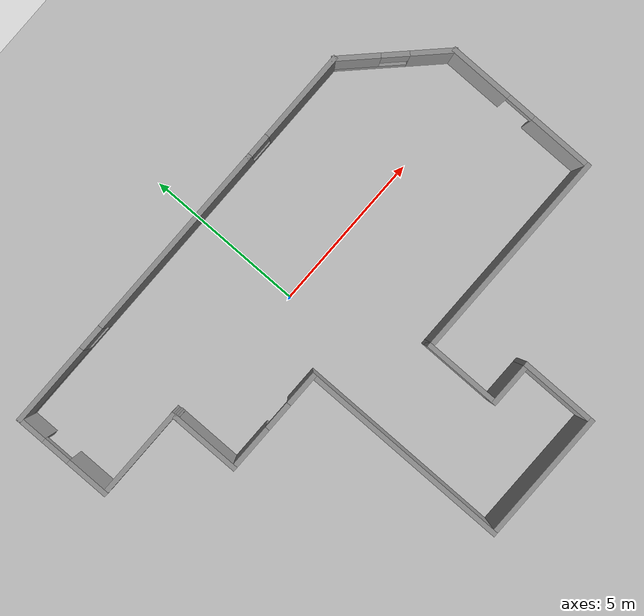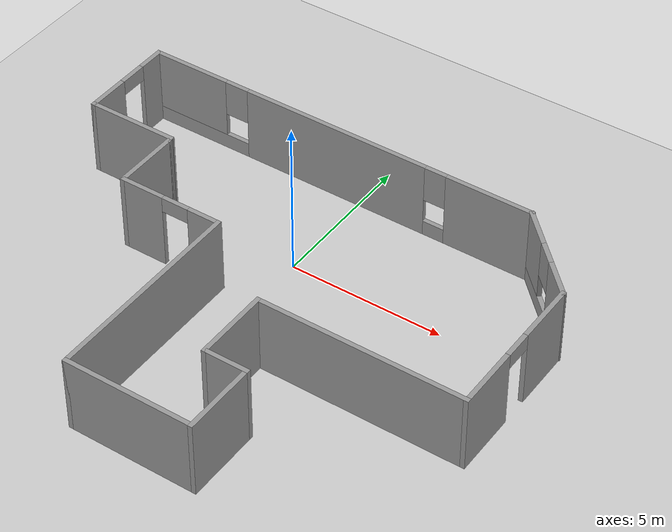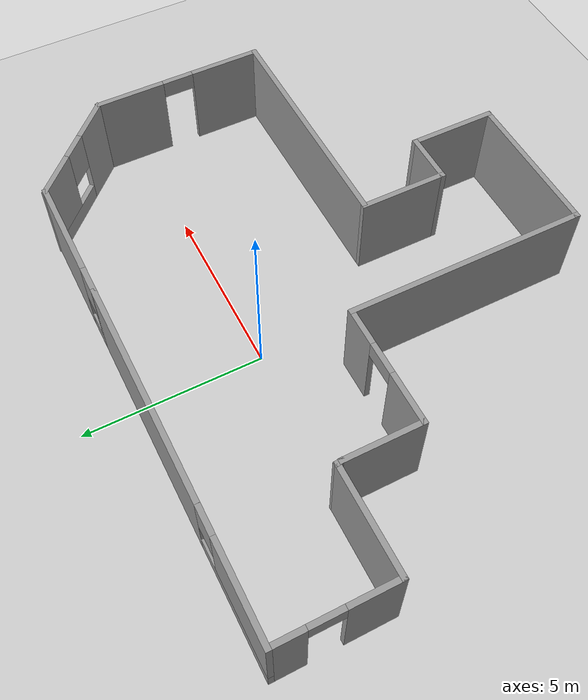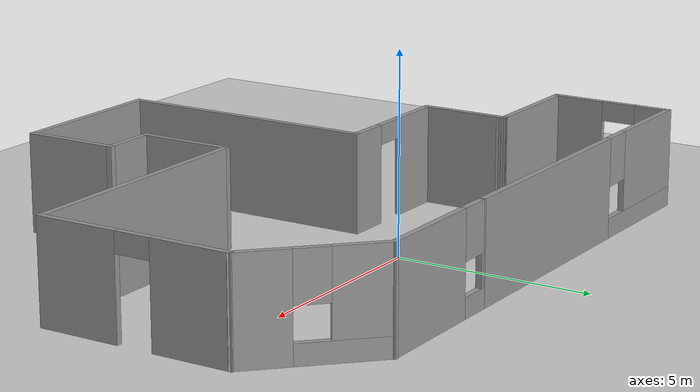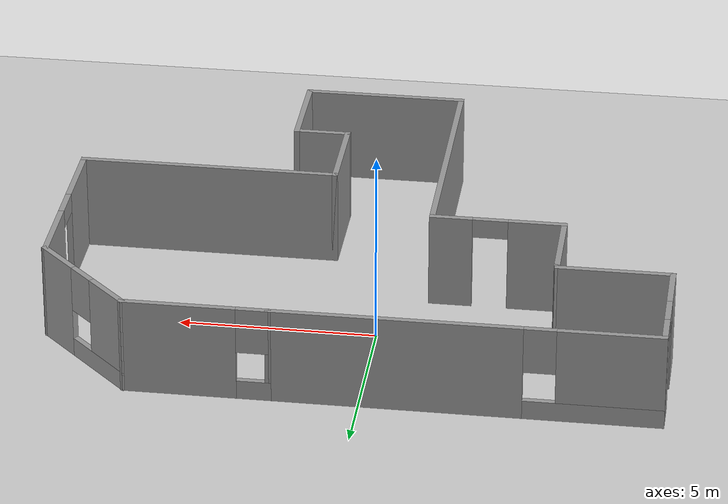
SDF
<sdf version="1.7">
 <world name="default">
  <light name="sun" type="directional">
   <pose>0 0 10 0 -0 0</pose>
   <diffuse>0.8 0.8 0.8 1</diffuse>
   <specular>0.2 0.2 0.2 1</specular>
   <attenuation>
    <range>1000</range>
    <constant>0.9</constant>
    <linear>0.01</linear>
    <quadratic>0.001</quadratic>
   </attenuation>
   <direction>-0.5 0.1 -0.9</direction>
   <spot><inner_angle>0</inner_angle><outer_angle>0</outer_angle><falloff>0</falloff></spot>
  </light>
  <model name="ground_plane">
   <static>1</static>
   <link name="link">
    <collision name="collision">
     <geometry><plane><normal>0 0 1</normal><size>100 100</size></plane></geometry>
     <surface><friction><ode><mu>100</mu><mu2>50</mu2></ode></friction></surface>
    </collision>
    <visual name="visual">
     <cast_shadows>0</cast_shadows>
     <geometry><plane><normal>0 0 1</normal><size>100 100</size></plane></geometry>
     <material>
      <script><uri>file://media/materials/scripts/gazebo.material</uri><name>Gazebo/Grey</name></script>
     </material>
    </visual>
   </link>
  </model>
  <gravity>0 0 -9.8</gravity>
  <magnetic_field>6e-06 2.3e-05 -4.2e-05</magnetic_field>
  <atmosphere type="adiabatic"/>
  <physics type="ode">
   <max_step_size>0.001</max_step_size>
   <real_time_factor>1</real_time_factor>
   <real_time_update_rate>1000</real_time_update_rate>
  </physics>
  <scene><ambient>0.4 0.4 0.4 1</ambient><background>0.7 0.7 0.7 1</background><shadows>1</shadows></scene>
  <audio><device>default</device></audio>
  <spherical_coordinates>
   <surface_model>EARTH_WGS84</surface_model>
   <latitude_deg>0</latitude_deg>
   <longitude_deg>0</longitude_deg>
   <elevation>0</elevation>
   <heading_deg>0</heading_deg>
  </spherical_coordinates>
  <model name="TestRoom">
   <pose>0.400485 -2.54284 0 0 -0 0</pose>
   <link name="Wall_0">
    <collision name="Wall_0_Collision">
     <geometry><box><size>2.25 0.15 2.5</size></box></geometry>
     <pose>0 0 1.25 0 -0 0</pose>
    </collision>
    <visual name="Wall_0_Visual">
     <pose>0 0 1.25 0 -0 0</pose>
     <geometry><box><size>2.25 0.15 2.5</size></box></geometry>
     <material>
      <script><uri>file://media/materials/scripts/gazebo.material</uri><name>Gazebo/Grey</name></script>
      <ambient>1 1 1 1</ambient>
     </material>
     <meta><layer>0</layer></meta>
    </visual>
    <pose>-4.93113 1.67506 0 0 -0 -1.5708</pose>
   </link>
   <link name="Wall_1">
    <pose>-3.25613 0.625063 0 0 -0 0</pose>
    <visual name="Wall_1_Visual_0">
     <pose>-1.00064 0 1.25 0 -0 0</pose>
     <geometry><box><size>1.49872 0.15 2.5</size></box></geometry>
     <material>
      <script><uri>file://media/materials/scripts/gazebo.material</uri><name>Gazebo/Grey</name></script>
      <ambient>1 1 1 1</ambient>
     </material>
     <meta><layer>0</layer></meta>
    </visual>
    <collision name="Wall_1_Collision_0">
     <geometry><box><size>1.49872 0.15 2.5</size></box></geometry>
     <pose>-1.00064 0 1.25 0 -0 0</pose>
    </collision>
    <visual name="Wall_1_Visual_1">
     <pose>1.19936 0 1.25 0 -0 0</pose>
     <geometry><box><size>1.10128 0.15 2.5</size></box></geometry>
     <material>
      <script><uri>file://media/materials/scripts/gazebo.material</uri><name>Gazebo/Grey</name></script>
      <ambient>1 1 1 1</ambient>
     </material>
     <meta><layer>0</layer></meta>
    </visual>
    <collision name="Wall_1_Collision_1">
     <geometry><box><size>1.10128 0.15 2.5</size></box></geometry>
     <pose>1.19936 0 1.25 0 -0 0</pose>
    </collision>
    <visual name="Wall_1_Visual_2">
     <pose>0.19872 0 2.25 0 -0 0</pose>
     <geometry><box><size>0.9 0.15 0.5</size></box></geometry>
     <material>
      <script><uri>file://media/materials/scripts/gazebo.material</uri><name>Gazebo/Grey</name></script>
      <ambient>1 1 1 1</ambient>
     </material>
     <meta><layer>0</layer></meta>
    </visual>
    <collision name="Wall_1_Collision_2">
     <geometry><box><size>0.9 0.15 0.5</size></box></geometry>
     <pose>0.19872 0 2.25 0 -0 0</pose>
    </collision>
   </link>
   <link name="Wall_10">
    <pose>3.60006 5.94387 0 0 -0 3.14159</pose>
    <visual name="Wall_10_Visual_0">
     <pose>-0.429582 0 1.25 0 -0 0</pose>
     <geometry><box><size>2.89084 0.15 2.5</size></box></geometry>
     <material>
      <script><uri>file://media/materials/scripts/gazebo.material</uri><name>Gazebo/Grey</name></script>
      <ambient>1 1 1 1</ambient>
     </material>
     <meta><layer>0</layer></meta>
    </visual>
    <collision name="Wall_10_Collision_0">
     <geometry><box><size>2.89084 0.15 2.5</size></box></geometry>
     <pose>-0.429582 0 1.25 0 -0 0</pose>
    </collision>
    <visual name="Wall_10_Visual_1">
     <pose>1.44542 0 0.25 0 -0 0</pose>
     <geometry><box><size>0.859163 0.15 0.5</size></box></geometry>
     <material>
      <script><uri>file://media/materials/scripts/gazebo.material</uri><name>Gazebo/Grey</name></script>
      <ambient>1 1 1 1</ambient>
     </material>
     <meta><layer>0</layer></meta>
    </visual>
    <collision name="Wall_10_Collision_1">
     <geometry><box><size>0.859163 0.15 0.5</size></box></geometry>
     <pose>1.44542 0 0.25 0 -0 0</pose>
    </collision>
    <visual name="Wall_10_Visual_2">
     <pose>1.84542 0 1.5 0 -0 0</pose>
     <geometry><box><size>0.059163 0.15 2</size></box></geometry>
     <material>
      <script><uri>file://media/materials/scripts/gazebo.material</uri><name>Gazebo/Grey</name></script>
      <ambient>1 1 1 1</ambient>
     </material>
     <meta><layer>0</layer></meta>
    </visual>
    <collision name="Wall_10_Collision_2">
     <geometry><box><size>0.059163 0.15 2</size></box></geometry>
     <pose>1.84542 0 1.5 0 -0 0</pose>
    </collision>
    <visual name="Wall_10_Visual_3">
     <pose>1.41584 0 1.9 0 -0 0</pose>
     <geometry><box><size>0.8 0.15 1.2</size></box></geometry>
     <material>
      <script><uri>file://media/materials/scripts/gazebo.material</uri><name>Gazebo/Grey</name></script>
      <ambient>1 1 1 1</ambient>
     </material>
     <meta><layer>0</layer></meta>
    </visual>
    <collision name="Wall_10_Collision_3">
     <geometry><box><size>0.8 0.15 1.2</size></box></geometry>
     <pose>1.41584 0 1.9 0 -0 0</pose>
    </collision>
   </link>
   <link name="Wall_11">
    <pose>-2.99994 5.94387 0 0 -0 3.14159</pose>
    <visual name="Wall_11_Visual_0">
     <pose>-1.7293 0 1.25 0 -0 0</pose>
     <geometry><box><size>6.29141 0.15 2.5</size></box></geometry>
     <material>
      <script><uri>file://media/materials/scripts/gazebo.material</uri><name>Gazebo/Grey</name></script>
      <ambient>1 1 1 1</ambient>
     </material>
     <meta><layer>0</layer></meta>
    </visual>
    <collision name="Wall_11_Collision_0">
     <geometry><box><size>6.29141 0.15 2.5</size></box></geometry>
     <pose>-1.7293 0 1.25 0 -0 0</pose>
    </collision>
    <visual name="Wall_11_Visual_1">
     <pose>3.1457 0 0.25 0 -0 0</pose>
     <geometry><box><size>3.45859 0.15 0.5</size></box></geometry>
     <material>
      <script><uri>file://media/materials/scripts/gazebo.material</uri><name>Gazebo/Grey</name></script>
      <ambient>1 1 1 1</ambient>
     </material>
     <meta><layer>0</layer></meta>
    </visual>
    <collision name="Wall_11_Collision_1">
     <geometry><box><size>3.45859 0.15 0.5</size></box></geometry>
     <pose>3.1457 0 0.25 0 -0 0</pose>
    </collision>
    <visual name="Wall_11_Visual_2">
     <pose>3.5457 0 1.5 0 -0 0</pose>
     <geometry><box><size>2.65859 0.15 2</size></box></geometry>
     <material>
      <script><uri>file://media/materials/scripts/gazebo.material</uri><name>Gazebo/Grey</name></script>
      <ambient>1 1 1 1</ambient>
     </material>
     <meta><layer>0</layer></meta>
    </visual>
    <collision name="Wall_11_Collision_2">
     <geometry><box><size>2.65859 0.15 2</size></box></geometry>
     <pose>3.5457 0 1.5 0 -0 0</pose>
    </collision>
    <visual name="Wall_11_Visual_3">
     <pose>1.81641 0 1.9 0 -0 0</pose>
     <geometry><box><size>0.8 0.15 1.2</size></box></geometry>
     <material>
      <script><uri>file://media/materials/scripts/gazebo.material</uri><name>Gazebo/Grey</name></script>
      <ambient>1 1 1 1</ambient>
     </material>
     <meta><layer>0</layer></meta>
    </visual>
    <collision name="Wall_11_Collision_3">
     <geometry><box><size>0.8 0.15 1.2</size></box></geometry>
     <pose>1.81641 0 1.9 0 -0 0</pose>
    </collision>
   </link>
   <link name="Wall_12">
    <pose>-7.79994 4.39387 0 0 -0 -1.5708</pose>
    <visual name="Wall_12_Visual_0">
     <pose>-1.15112 0 1.25 0 -0 0</pose>
     <geometry><box><size>0.947764 0.15 2.5</size></box></geometry>
     <material>
      <script><uri>file://media/materials/scripts/gazebo.material</uri><name>Gazebo/Grey</name></script>
      <ambient>1 1 1 1</ambient>
     </material>
     <meta><layer>0</layer></meta>
    </visual>
    <collision name="Wall_12_Collision_0">
     <geometry><box><size>0.947764 0.15 2.5</size></box></geometry>
     <pose>-1.15112 0 1.25 0 -0 0</pose>
    </collision>
    <visual name="Wall_12_Visual_1">
     <pose>0.923882 0 1.25 0 -0 0</pose>
     <geometry><box><size>1.40224 0.15 2.5</size></box></geometry>
     <material>
      <script><uri>file://media/materials/scripts/gazebo.material</uri><name>Gazebo/Grey</name></script>
      <ambient>1 1 1 1</ambient>
     </material>
     <meta><layer>0</layer></meta>
    </visual>
    <collision name="Wall_12_Collision_1">
     <geometry><box><size>1.40224 0.15 2.5</size></box></geometry>
     <pose>0.923882 0 1.25 0 -0 0</pose>
    </collision>
    <visual name="Wall_12_Visual_2">
     <pose>-0.227236 0 2.25 0 -0 0</pose>
     <geometry><box><size>0.9 0.15 0.5</size></box></geometry>
     <material>
      <script><uri>file://media/materials/scripts/gazebo.material</uri><name>Gazebo/Grey</name></script>
      <ambient>1 1 1 1</ambient>
     </material>
     <meta><layer>0</layer></meta>
    </visual>
    <collision name="Wall_12_Collision_2">
     <geometry><box><size>0.9 0.15 0.5</size></box></geometry>
     <pose>-0.227236 0 2.25 0 -0 0</pose>
    </collision>
   </link>
   <link name="Wall_13">
    <collision name="Wall_13_Collision">
     <geometry><box><size>3 0.15 2.5</size></box></geometry>
     <pose>0 0 1.25 0 -0 0</pose>
    </collision>
    <visual name="Wall_13_Visual">
     <pose>0 0 1.25 0 -0 0</pose>
     <geometry><box><size>3 0.15 2.5</size></box></geometry>
     <material>
      <script><uri>file://media/materials/scripts/gazebo.material</uri><name>Gazebo/Grey</name></script>
      <ambient>1 1 1 1</ambient>
     </material>
     <meta><layer>0</layer></meta>
    </visual>
    <pose>-6.37494 2.84387 0 0 -0 0</pose>
   </link>
   <link name="Wall_14">
    <collision name="Wall_14_Collision">
     <geometry><box><size>0.270287 0.15 2.5</size></box></geometry>
     <pose>0 0 1.25 0 -0 0</pose>
    </collision>
    <visual name="Wall_14_Visual">
     <pose>0 0 1.25 0 -0 0</pose>
     <geometry><box><size>0.270287 0.15 2.5</size></box></geometry>
     <material>
      <script><uri>file://media/materials/scripts/gazebo.material</uri><name>Gazebo/Grey</name></script>
      <ambient>1 1 1 1</ambient>
     </material>
     <meta><layer>0</layer></meta>
    </visual>
    <pose>-4.94053 2.78447 0 0 -0 -1.41379</pose>
   </link>
   <link name="Wall_2">
    <collision name="Wall_2_Collision">
     <geometry><box><size>6.75 0.15 2.5</size></box></geometry>
     <pose>0 0 1.25 0 -0 0</pose>
    </collision>
    <visual name="Wall_2_Visual">
     <pose>0 0 1.25 0 -0 0</pose>
     <geometry><box><size>6.75 0.15 2.5</size></box></geometry>
     <material>
      <script><uri>file://media/materials/scripts/gazebo.material</uri><name>Gazebo/Grey</name></script>
      <ambient>1 1 1 1</ambient>
     </material>
     <meta><layer>0</layer></meta>
    </visual>
    <pose>-1.58113 -2.67494 0 0 -0 -1.5708</pose>
   </link>
   <link name="Wall_3">
    <collision name="Wall_3_Collision">
     <geometry><box><size>4.25 0.15 2.5</size></box></geometry>
     <pose>0 0 1.25 0 -0 0</pose>
    </collision>
    <visual name="Wall_3_Visual">
     <pose>0 0 1.25 0 -0 0</pose>
     <geometry><box><size>4.25 0.15 2.5</size></box></geometry>
     <material>
      <script><uri>file://media/materials/scripts/gazebo.material</uri><name>Gazebo/Grey</name></script>
      <ambient>1 1 1 1</ambient>
     </material>
     <meta><layer>0</layer></meta>
    </visual>
    <pose>0.468871 -5.97494 0 0 -0 0</pose>
   </link>
   <link name="Wall_4">
    <collision name="Wall_4_Collision">
     <geometry><box><size>2.5 0.15 2.5</size></box></geometry>
     <pose>0 0 1.25 0 -0 0</pose>
    </collision>
    <visual name="Wall_4_Visual">
     <pose>0 0 1.25 0 -0 0</pose>
     <geometry><box><size>2.5 0.15 2.5</size></box></geometry>
     <material>
      <script><uri>file://media/materials/scripts/gazebo.material</uri><name>Gazebo/Grey</name></script>
      <ambient>1 1 1 1</ambient>
     </material>
     <meta><layer>0</layer></meta>
    </visual>
    <pose>2.51887 -4.79994 0 0 -0 1.5708</pose>
   </link>
   <link name="Wall_5">
    <collision name="Wall_5_Collision">
     <geometry><box><size>1.5 0.15 2.5</size></box></geometry>
     <pose>0 0 1.25 0 -0 0</pose>
    </collision>
    <visual name="Wall_5_Visual">
     <pose>0 0 1.25 0 -0 0</pose>
     <geometry><box><size>1.5 0.15 2.5</size></box></geometry>
     <material>
      <script><uri>file://media/materials/scripts/gazebo.material</uri><name>Gazebo/Grey</name></script>
      <ambient>1 1 1 1</ambient>
     </material>
     <meta><layer>0</layer></meta>
    </visual>
    <pose>1.84387 -3.62494 0 0 -0 3.14159</pose>
   </link>
   <link name="Wall_6">
    <collision name="Wall_6_Collision">
     <geometry><box><size>2.5 0.15 2.5</size></box></geometry>
     <pose>0 0 1.25 0 -0 0</pose>
    </collision>
    <visual name="Wall_6_Visual">
     <pose>0 0 1.25 0 -0 0</pose>
     <geometry><box><size>2.5 0.15 2.5</size></box></geometry>
     <material>
      <script><uri>file://media/materials/scripts/gazebo.material</uri><name>Gazebo/Grey</name></script>
      <ambient>1 1 1 1</ambient>
     </material>
     <meta><layer>0</layer></meta>
    </visual>
    <pose>1.16887 -2.44994 0 0 -0 1.5708</pose>
   </link>
   <link name="Wall_7">
    <collision name="Wall_7_Collision">
     <geometry><box><size>6.75 0.15 2.5</size></box></geometry>
     <pose>0 0 1.25 0 -0 0</pose>
    </collision>
    <visual name="Wall_7_Visual">
     <pose>0 0 1.25 0 -0 0</pose>
     <geometry><box><size>6.75 0.15 2.5</size></box></geometry>
     <material>
      <script><uri>file://media/materials/scripts/gazebo.material</uri><name>Gazebo/Grey</name></script>
      <ambient>1 1 1 1</ambient>
     </material>
     <meta><layer>0</layer></meta>
    </visual>
    <pose>4.46887 -1.27494 0 0 -0 0</pose>
   </link>
   <link name="Wall_8">
    <pose>7.76887 1.15006 0 0 -0 1.5708</pose>
    <visual name="Wall_8_Visual_0">
     <pose>-1.46324 0 1.25 0 -0 0</pose>
     <geometry><box><size>2.07353 0.15 2.5</size></box></geometry>
     <material>
      <script><uri>file://media/materials/scripts/gazebo.material</uri><name>Gazebo/Grey</name></script>
      <ambient>1 1 1 1</ambient>
     </material>
     <meta><layer>0</layer></meta>
    </visual>
    <collision name="Wall_8_Collision_0">
     <geometry><box><size>2.07353 0.15 2.5</size></box></geometry>
     <pose>-1.46324 0 1.25 0 -0 0</pose>
    </collision>
    <visual name="Wall_8_Visual_1">
     <pose>1.48676 0 1.25 0 -0 0</pose>
     <geometry><box><size>2.02648 0.15 2.5</size></box></geometry>
     <material>
      <script><uri>file://media/materials/scripts/gazebo.material</uri><name>Gazebo/Grey</name></script>
      <ambient>1 1 1 1</ambient>
     </material>
     <meta><layer>0</layer></meta>
    </visual>
    <collision name="Wall_8_Collision_1">
     <geometry><box><size>2.02648 0.15 2.5</size></box></geometry>
     <pose>1.48676 0 1.25 0 -0 0</pose>
    </collision>
    <visual name="Wall_8_Visual_2">
     <pose>0.023525 0 2.25 0 -0 0</pose>
     <geometry><box><size>0.9 0.15 0.5</size></box></geometry>
     <material>
      <script><uri>file://media/materials/scripts/gazebo.material</uri><name>Gazebo/Grey</name></script>
      <ambient>1 1 1 1</ambient>
     </material>
     <meta><layer>0</layer></meta>
    </visual>
    <collision name="Wall_8_Collision_2">
     <geometry><box><size>0.9 0.15 0.5</size></box></geometry>
     <pose>0.023525 0 2.25 0 -0 0</pose>
    </collision>
   </link>
   <link name="Wall_9">
    <pose>6.58447 4.75947 0 0 -0 2.35619</pose>
    <visual name="Wall_9_Visual_0">
     <pose>-1.08558 0 1.25 0 -0 0</pose>
     <geometry><box><size>1.32884 0.15 2.5</size></box></geometry>
     <material>
      <script><uri>file://media/materials/scripts/gazebo.material</uri><name>Gazebo/Grey</name></script>
      <ambient>1 1 1 1</ambient>
     </material>
     <meta><layer>0</layer></meta>
    </visual>
    <collision name="Wall_9_Collision_0">
     <geometry><box><size>1.32884 0.15 2.5</size></box></geometry>
     <pose>-1.08558 0 1.25 0 -0 0</pose>
    </collision>
    <visual name="Wall_9_Visual_1">
     <pose>0.664419 0 0.25 0 -0 0</pose>
     <geometry><box><size>2.17116 0.15 0.5</size></box></geometry>
     <material>
      <script><uri>file://media/materials/scripts/gazebo.material</uri><name>Gazebo/Grey</name></script>
      <ambient>1 1 1 1</ambient>
     </material>
     <meta><layer>0</layer></meta>
    </visual>
    <collision name="Wall_9_Collision_1">
     <geometry><box><size>2.17116 0.15 0.5</size></box></geometry>
     <pose>0.664419 0 0.25 0 -0 0</pose>
    </collision>
    <visual name="Wall_9_Visual_2">
     <pose>1.06442 0 1.5 0 -0 0</pose>
     <geometry><box><size>1.37116 0.15 2</size></box></geometry>
     <material>
      <script><uri>file://media/materials/scripts/gazebo.material</uri><name>Gazebo/Grey</name></script>
      <ambient>1 1 1 1</ambient>
     </material>
     <meta><layer>0</layer></meta>
    </visual>
    <collision name="Wall_9_Collision_2">
     <geometry><box><size>1.37116 0.15 2</size></box></geometry>
     <pose>1.06442 0 1.5 0 -0 0</pose>
    </collision>
    <visual name="Wall_9_Visual_3">
     <pose>-0.021163 0 1.9 0 -0 0</pose>
     <geometry><box><size>0.8 0.15 1.2</size></box></geometry>
     <material>
      <script><uri>file://media/materials/scripts/gazebo.material</uri><name>Gazebo/Grey</name></script>
      <ambient>1 1 1 1</ambient>
     </material>
     <meta><layer>0</layer></meta>
    </visual>
    <collision name="Wall_9_Collision_3">
     <geometry><box><size>0.8 0.15 1.2</size></box></geometry>
     <pose>-0.021163 0 1.9 0 -0 0</pose>
    </collision>
   </link>
   <static>1</static>
  </model>
 </world>
</sdf>
